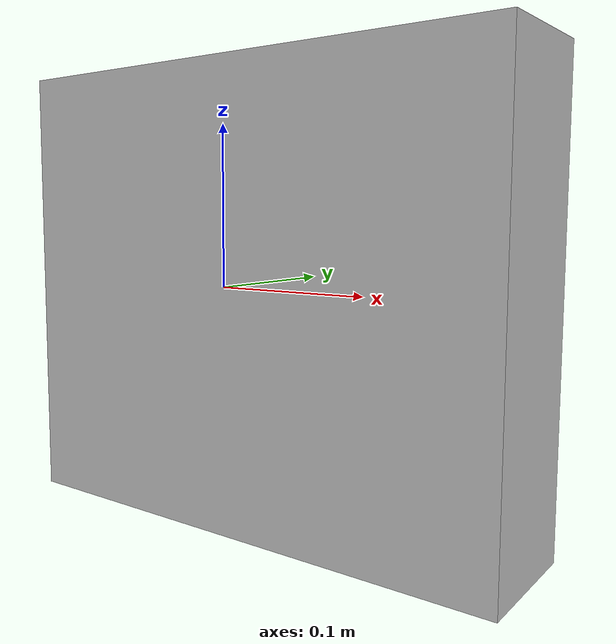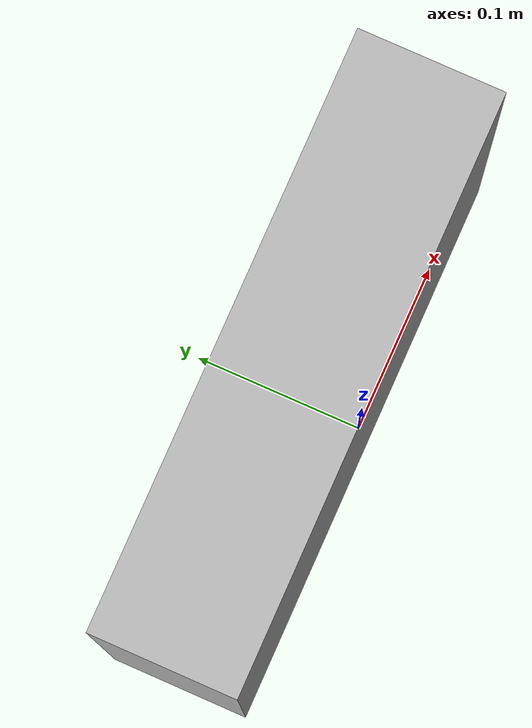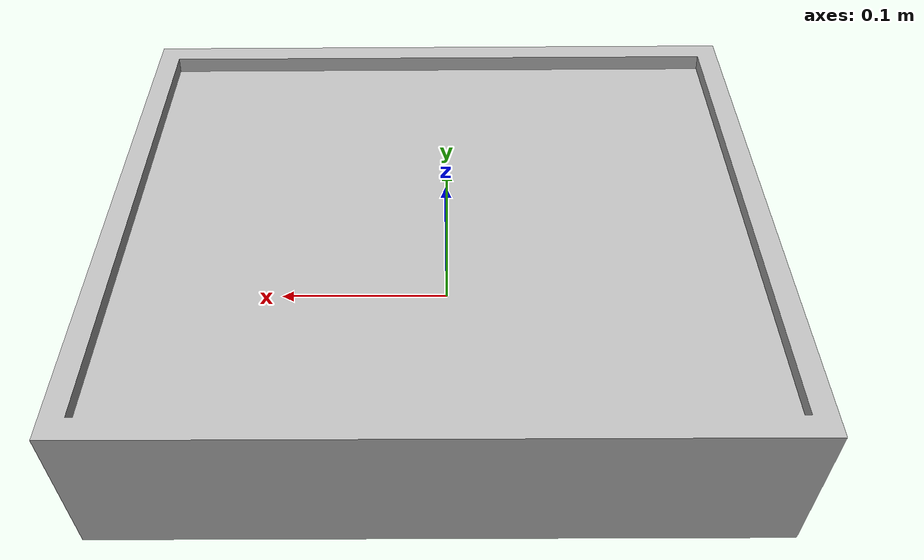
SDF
<?xml version="1.0" ?>
<sdf version="1.4">
  <model name="shelf1_box1_5b">
    <link name="body">
      <pose>0 0 0 0 0 0</pose>
      <inertial>
        <pose>   0.004999   0.038821  -0.009050 0 0 0</pose>
        <mass>0.5</mass>
        <inertia>
          <ixx>0.01</ixx>
          <ixy>0</ixy>
          <ixz>0</ixz>
          <iyy>0.01</iyy>
          <iyz>0</iyz>
          <izz>0.01</izz>
        </inertia>
      </inertial>
      <collision name="collision">
        <geometry>
          <mesh>
            <uri>model://bookshelf/shelf1_items/box1_5b/box1_5b.dae</uri>
          </mesh>
        </geometry>
      </collision>
      <visual name="visual">
        <geometry>
          <mesh>
            <uri>model://bookshelf/shelf1_items/box1_5b/box1_5b.dae</uri>
          </mesh>
        </geometry>
      </visual>
    </link>
  </model>
</sdf>
